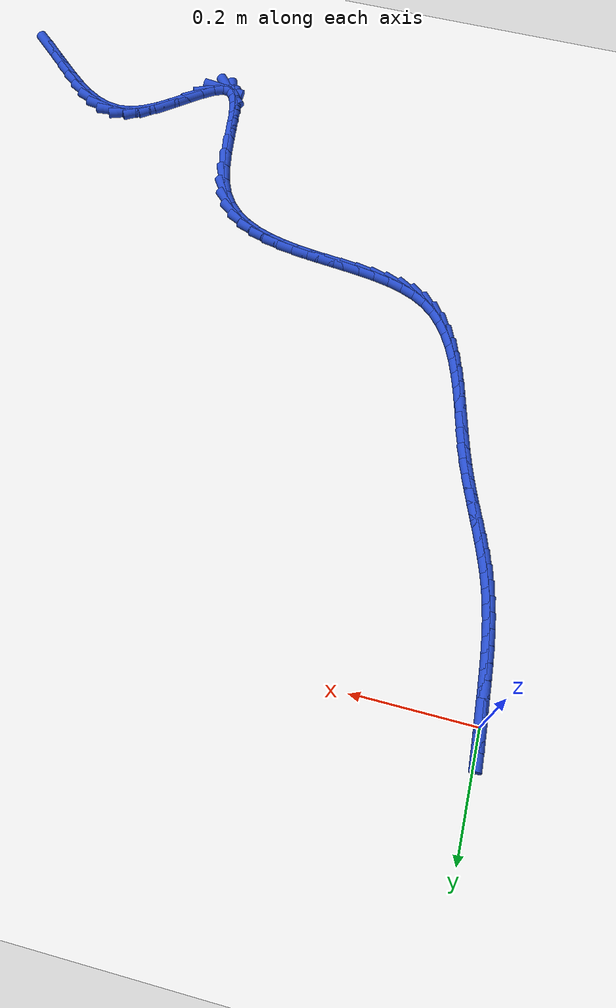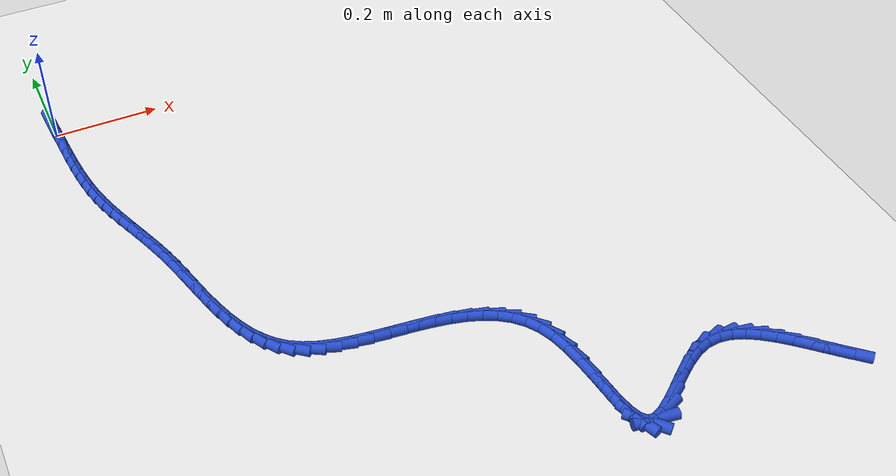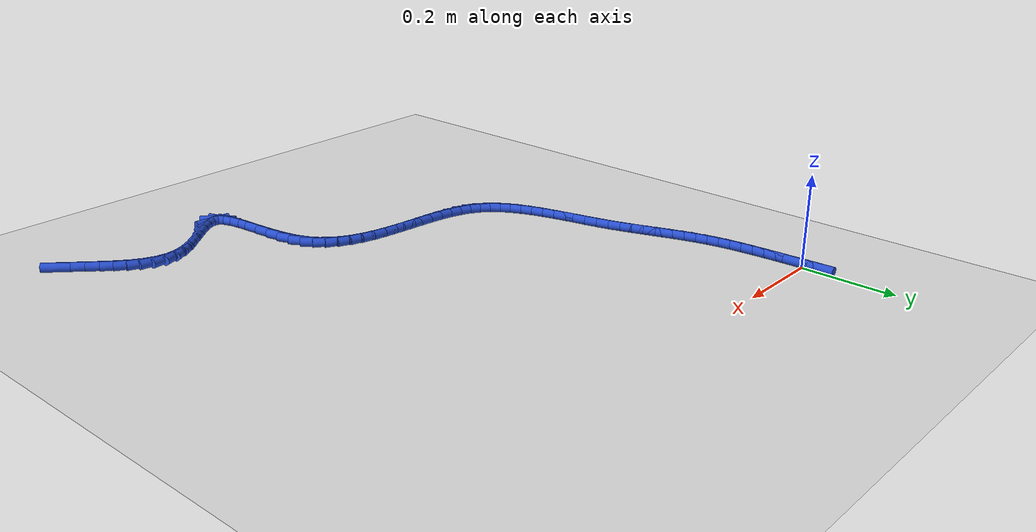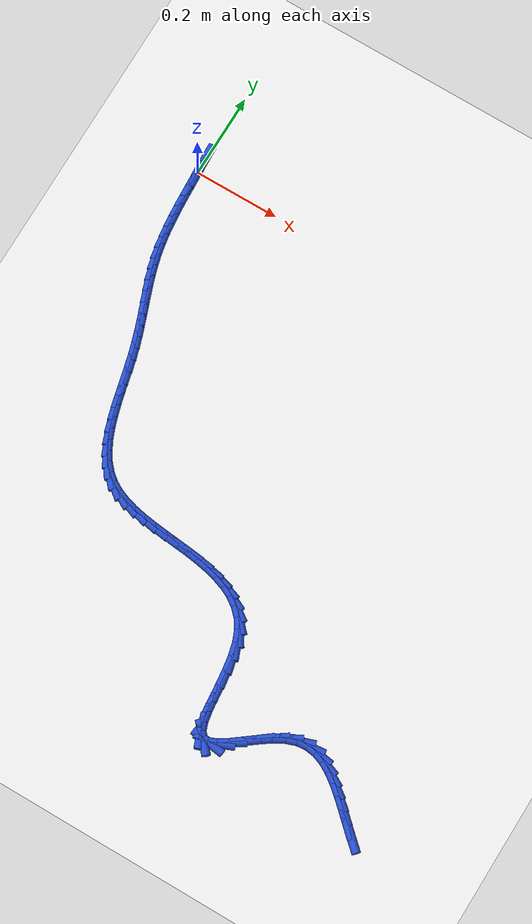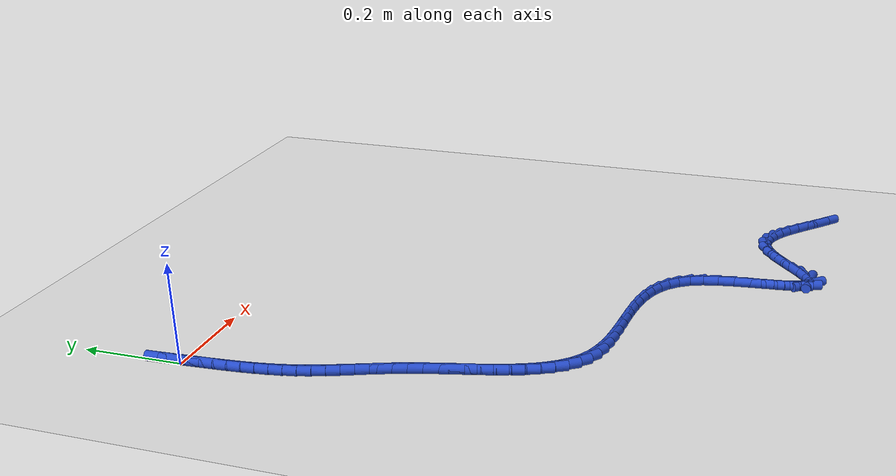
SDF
<sdf version="1.6">
 <world name="default">
  <model name="ground_plane">
   <static>1</static>
   <link name="link">
    <collision name="collision">
     <geometry><plane><normal>0 0 1</normal><size>100 100</size></plane></geometry>
     <surface><friction><ode><mu>100</mu><mu2>50</mu2></ode></friction></surface>
    </collision>
    <visual name="visual">
     <cast_shadows>0</cast_shadows>
     <geometry><plane><normal>0 0 1</normal><size>100 100</size></plane></geometry>
     <material>
      <script><uri>file://media/materials/scripts/gazebo.material</uri><name>Gazebo/WhiteGlow</name></script>
     </material>
    </visual>
   </link>
  </model>
  <model name="line">
   <link name="link_0">
    <pose>3.0357660829594124e-18 1.457167719820518e-16 0.01 0 1.57 -1.5142388703939624</pose>
    <collision name="collision">
     <geometry><cylinder><radius>0.01</radius><length>0.08</length></cylinder></geometry>
    </collision>
    <visual name="visual">
     <material>
      <script><name>Gazebo/Blue</name><uri>file://media/materials/scripts/gazebo.material</uri></script>
     </material>
     <geometry><cylinder><radius>0.01</radius><length>0.08</length></cylinder></geometry>
    </visual>
   </link>
   <link name="link_1">
    <pose>-0.001573101638511119 0.027784558628592738 0.01 0 1.57 -1.524897964280129</pose>
    <collision name="collision">
     <geometry><cylinder><radius>0.01</radius><length>0.08</length></cylinder></geometry>
    </collision>
    <visual name="visual">
     <material>
      <script><name>Gazebo/Blue</name><uri>file://media/materials/scripts/gazebo.material</uri></script>
     </material>
     <geometry><cylinder><radius>0.01</radius><length>0.08</length></cylinder></geometry>
    </visual>
   </link>
   <link name="link_220">
    <pose>1.0447408805715335 -1.1016761940526603 0.01 0 1.57 -0.7399274197182725</pose>
    <collision name="collision">
     <geometry><cylinder><radius>0.01</radius><length>0.08</length></cylinder></geometry>
    </collision>
    <visual name="visual">
     <material>
      <script><name>Gazebo/Blue</name><uri>file://media/materials/scripts/gazebo.material</uri></script>
     </material>
     <geometry><cylinder><radius>0.01</radius><length>0.08</length></cylinder></geometry>
    </visual>
   </link>
   <link name="link_221">
    <pose>1.0222661026128428 -1.0811577005693018 0.01 0 1.57 -0.7518106872347607</pose>
    <collision name="collision">
     <geometry><cylinder><radius>0.01</radius><length>0.08</length></cylinder></geometry>
    </collision>
    <visual name="visual">
     <material>
      <script><name>Gazebo/Blue</name><uri>file://media/materials/scripts/gazebo.material</uri></script>
     </material>
     <geometry><cylinder><radius>0.01</radius><length>0.08</length></cylinder></geometry>
    </visual>
   </link>
   <link name="link_222">
    <pose>1.0002999129753796 -1.060619657901304 0.01 0 1.57 -0.7391358604021896</pose>
    <collision name="collision">
     <geometry><cylinder><radius>0.01</radius><length>0.08</length></cylinder></geometry>
    </collision>
    <visual name="visual">
     <material>
      <script><name>Gazebo/Blue</name><uri>file://media/materials/scripts/gazebo.material</uri></script>
     </material>
     <geometry><cylinder><radius>0.01</radius><length>0.08</length></cylinder></geometry>
    </visual>
   </link>
   <link name="link_223">
    <pose>0.9786494217322549 -1.04088510130411 0.01 0 1.57 -0.6993343699864498</pose>
    <collision name="collision">
     <geometry><cylinder><radius>0.01</radius><length>0.08</length></cylinder></geometry>
    </collision>
    <visual name="visual">
     <material>
      <script><name>Gazebo/Blue</name><uri>file://media/materials/scripts/gazebo.material</uri></script>
     </material>
     <geometry><cylinder><radius>0.01</radius><length>0.08</length></cylinder></geometry>
    </visual>
   </link>
   <link name="link_224">
    <pose>0.9571217389565814 -1.022777066033165 0.01 0 1.57 -0.627311215593188</pose>
    <collision name="collision">
     <geometry><cylinder><radius>0.01</radius><length>0.08</length></cylinder></geometry>
    </collision>
    <visual name="visual">
     <material>
      <script><name>Gazebo/Blue</name><uri>file://media/materials/scripts/gazebo.material</uri></script>
     </material>
     <geometry><cylinder><radius>0.01</radius><length>0.08</length></cylinder></geometry>
    </visual>
   </link>
   <link name="link_225">
    <pose>0.9355239747214711 -1.0071185873439132 0.01 0 1.57 -0.5154844862760257</pose>
    <collision name="collision">
     <geometry><cylinder><radius>0.01</radius><length>0.08</length></cylinder></geometry>
    </collision>
    <visual name="visual">
     <material>
      <script><name>Gazebo/Blue</name><uri>file://media/materials/scripts/gazebo.material</uri></script>
     </material>
     <geometry><cylinder><radius>0.01</radius><length>0.08</length></cylinder></geometry>
    </visual>
   </link>
   <link name="link_226">
    <pose>0.9136632391000354 -0.9947327004917987 0.01 0 1.57 -0.3556846340617245</pose>
    <collision name="collision">
     <geometry><cylinder><radius>0.01</radius><length>0.08</length></cylinder></geometry>
    </collision>
    <visual name="visual">
     <material>
      <script><name>Gazebo/Blue</name><uri>file://media/materials/scripts/gazebo.material</uri></script>
     </material>
     <geometry><cylinder><radius>0.01</radius><length>0.08</length></cylinder></geometry>
    </visual>
   </link>
   <link name="link_227">
    <pose>0.8913466421653866 -0.9864424407322661 0.01 0 1.57 -0.14577102197636047</pose>
    <collision name="collision">
     <geometry><cylinder><radius>0.01</radius><length>0.08</length></cylinder></geometry>
    </collision>
    <visual name="visual">
     <material>
      <script><name>Gazebo/Blue</name><uri>file://media/materials/scripts/gazebo.material</uri></script>
     </material>
     <geometry><cylinder><radius>0.01</radius><length>0.08</length></cylinder></geometry>
    </visual>
   </link>
   <link name="link_228">
    <pose>0.8683812939906368 -0.98307084332076 0.01 0 1.57 0.09922784639381407</pose>
    <collision name="collision">
     <geometry><cylinder><radius>0.01</radius><length>0.08</length></cylinder></geometry>
    </collision>
    <visual name="visual">
     <material>
      <script><name>Gazebo/Blue</name><uri>file://media/materials/scripts/gazebo.material</uri></script>
     </material>
     <geometry><cylinder><radius>0.01</radius><length>0.08</length></cylinder></geometry>
    </visual>
   </link>
   <link name="link_229">
    <pose>0.8445743046488978 -0.9854409435127245 0.01 0 1.57 0.3438056435857901</pose>
    <collision name="collision">
     <geometry><cylinder><radius>0.01</radius><length>0.08</length></cylinder></geometry>
    </collision>
    <visual name="visual">
     <material>
      <script><name>Gazebo/Blue</name><uri>file://media/materials/scripts/gazebo.material</uri></script>
     </material>
     <geometry><cylinder><radius>0.01</radius><length>0.08</length></cylinder></geometry>
    </visual>
   </link>
   <link name="link_230">
    <pose>0.8197464498208067 -0.9943299241628845 0.01 0 1.57 0.5222644661790398</pose>
    <collision name="collision">
     <geometry><cylinder><radius>0.01</radius><length>0.08</length></cylinder></geometry>
    </collision>
    <visual name="visual">
     <material>
      <script><name>Gazebo/Blue</name><uri>file://media/materials/scripts/gazebo.material</uri></script>
     </material>
     <geometry><cylinder><radius>0.01</radius><length>0.08</length></cylinder></geometry>
    </visual>
   </link>
   <link name="link_231">
    <pose>0.7941516653990618 -1.0090615797140299 0.01 0 1.57 0.6176115552727601</pose>
    <collision name="collision">
     <geometry><cylinder><radius>0.01</radius><length>0.08</length></cylinder></geometry>
    </collision>
    <visual name="visual">
     <material>
      <script><name>Gazebo/Blue</name><uri>file://media/materials/scripts/gazebo.material</uri></script>
     </material>
     <geometry><cylinder><radius>0.01</radius><length>0.08</length></cylinder></geometry>
    </visual>
   </link>
   <link name="link_232">
    <pose>0.7685556161523783 -1.0272426936791645 0.01 0 1.57 0.6572075074999996</pose>
    <collision name="collision">
     <geometry><cylinder><radius>0.01</radius><length>0.08</length></cylinder></geometry>
    </collision>
    <visual name="visual">
     <material>
      <script><name>Gazebo/Blue</name><uri>file://media/materials/scripts/gazebo.material</uri></script>
     </material>
     <geometry><cylinder><radius>0.01</radius><length>0.08</length></cylinder></geometry>
    </visual>
   </link>
   <link name="link_233">
    <pose>0.7437534831810739 -1.046381013018266 0.01 0 1.57 0.6488145937634866</pose>
    <collision name="collision">
     <geometry><cylinder><radius>0.01</radius><length>0.08</length></cylinder></geometry>
    </collision>
    <visual name="visual">
     <material>
      <script><name>Gazebo/Blue</name><uri>file://media/materials/scripts/gazebo.material</uri></script>
     </material>
     <geometry><cylinder><radius>0.01</radius><length>0.08</length></cylinder></geometry>
    </visual>
   </link>
   <link name="link_234">
    <pose>0.7205404475854625 -1.063984284691313 0.01 0 1.57 0.5776323832995236</pose>
    <collision name="collision">
     <geometry><cylinder><radius>0.01</radius><length>0.08</length></cylinder></geometry>
    </collision>
    <visual name="visual">
     <material>
      <script><name>Gazebo/Blue</name><uri>file://media/materials/scripts/gazebo.material</uri></script>
     </material>
     <geometry><cylinder><radius>0.01</radius><length>0.08</length></cylinder></geometry>
    </visual>
   </link>
   <link name="link_235">
    <pose>0.6997116904658615 -1.0775602556582837 0.01 0 1.57 0.3803450925150977</pose>
    <collision name="collision">
     <geometry><cylinder><radius>0.01</radius><length>0.08</length></cylinder></geometry>
    </collision>
    <visual name="visual">
     <material>
      <script><name>Gazebo/Blue</name><uri>file://media/materials/scripts/gazebo.material</uri></script>
     </material>
     <geometry><cylinder><radius>0.01</radius><length>0.08</length></cylinder></geometry>
    </visual>
   </link>
   <link name="link_236">
    <pose>0.6820623929225861 -1.084616672879155 0.01 0 1.57 -0.13524217830947693</pose>
    <collision name="collision">
     <geometry><cylinder><radius>0.01</radius><length>0.08</length></cylinder></geometry>
    </collision>
    <visual name="visual">
     <material>
      <script><name>Gazebo/Blue</name><uri>file://media/materials/scripts/gazebo.material</uri></script>
     </material>
     <geometry><cylinder><radius>0.01</radius><length>0.08</length></cylinder></geometry>
    </visual>
   </link>
   <link name="link_237">
    <pose>0.6683510015579817 -1.0827509254306007 0.01 0 1.57 -0.84968308307362</pose>
    <collision name="collision">
     <geometry><cylinder><radius>0.01</radius><length>0.08</length></cylinder></geometry>
    </collision>
    <visual name="visual">
     <material>
      <script><name>Gazebo/Blue</name><uri>file://media/materials/scripts/gazebo.material</uri></script>
     </material>
     <geometry><cylinder><radius>0.01</radius><length>0.08</length></cylinder></geometry>
    </visual>
   </link>
   <link name="link_238">
    <pose>0.6585156532528151 -1.0715621801145554 0.01 0 1.57 -1.2248499734490885</pose>
    <collision name="collision">
     <geometry><cylinder><radius>0.01</radius><length>0.08</length></cylinder></geometry>
    </collision>
    <visual name="visual">
     <material>
      <script><name>Gazebo/Blue</name><uri>file://media/materials/scripts/gazebo.material</uri></script>
     </material>
     <geometry><cylinder><radius>0.01</radius><length>0.08</length></cylinder></geometry>
    </visual>
   </link>
   <link name="link_239">
    <pose>0.6516876047193517 -1.0526186097142027 0.01 0 1.57 -1.384399415902289</pose>
    <collision name="collision">
     <geometry><cylinder><radius>0.01</radius><length>0.08</length></cylinder></geometry>
    </collision>
    <visual name="visual">
     <material>
      <script><name>Gazebo/Blue</name><uri>file://media/materials/scripts/gazebo.material</uri></script>
     </material>
     <geometry><cylinder><radius>0.01</radius><length>0.08</length></cylinder></geometry>
    </visual>
   </link>
   <link name="link_240">
    <pose>0.6469640643119217 -1.0275714742207684 0.01 0 1.57 -1.4519726045118813</pose>
    <collision name="collision">
     <geometry><cylinder><radius>0.01</radius><length>0.08</length></cylinder></geometry>
    </collision>
    <visual name="visual">
     <material>
      <script><name>Gazebo/Blue</name><uri>file://media/materials/scripts/gazebo.material</uri></script>
     </material>
     <geometry><cylinder><radius>0.01</radius><length>0.08</length></cylinder></geometry>
    </visual>
   </link>
   <link name="link_241">
    <pose>0.6434422403848554 -0.9980720336254778 0.01 0 1.57 -1.471346830337238</pose>
    <collision name="collision">
     <geometry><cylinder><radius>0.01</radius><length>0.08</length></cylinder></geometry>
    </collision>
    <visual name="visual">
     <material>
      <script><name>Gazebo/Blue</name><uri>file://media/materials/scripts/gazebo.material</uri></script>
     </material>
     <geometry><cylinder><radius>0.01</radius><length>0.08</length></cylinder></geometry>
    </visual>
   </link>
   <link name="link_242">
    <pose>0.6402193412924835 -0.9657715479195569 0.01 0 1.57 -1.456889888200333</pose>
    <collision name="collision">
     <geometry><cylinder><radius>0.01</radius><length>0.08</length></cylinder></geometry>
    </collision>
    <visual name="visual">
     <material>
      <script><name>Gazebo/Blue</name><uri>file://media/materials/scripts/gazebo.material</uri></script>
     </material>
     <geometry><cylinder><radius>0.01</radius><length>0.08</length></cylinder></geometry>
    </visual>
   </link>
   <link name="link_243">
    <pose>0.6363925753891359 -0.9323212770942306 0.01 0 1.57 -1.4103181938623464</pose>
    <collision name="collision">
     <geometry><cylinder><radius>0.01</radius><length>0.08</length></cylinder></geometry>
    </collision>
    <visual name="visual">
     <material>
      <script><name>Gazebo/Blue</name><uri>file://media/materials/scripts/gazebo.material</uri></script>
     </material>
     <geometry><cylinder><radius>0.01</radius><length>0.08</length></cylinder></geometry>
    </visual>
   </link>
   <link name="link_244">
    <pose>0.6310591510291436 -0.8993724811407257 0.01 0 1.57 -1.3244777070925944</pose>
    <collision name="collision">
     <geometry><cylinder><radius>0.01</radius><length>0.08</length></cylinder></geometry>
    </collision>
    <visual name="visual">
     <material>
      <script><name>Gazebo/Blue</name><uri>file://media/materials/scripts/gazebo.material</uri></script>
     </material>
     <geometry><cylinder><radius>0.01</radius><length>0.08</length></cylinder></geometry>
    </visual>
   </link>
   <link name="link_245">
    <pose>0.6233162765668364 -0.8685764200502666 0.01 0 1.57 -1.1827235247190888</pose>
    <collision name="collision">
     <geometry><cylinder><radius>0.01</radius><length>0.08</length></cylinder></geometry>
    </collision>
    <visual name="visual">
     <material>
      <script><name>Gazebo/Blue</name><uri>file://media/materials/scripts/gazebo.material</uri></script>
     </material>
     <geometry><cylinder><radius>0.01</radius><length>0.08</length></cylinder></geometry>
    </visual>
   </link>
   <link name="link_246">
    <pose>0.6122735503208517 -0.8415641357954396 0.01 0 1.57 -0.9912862299851828</pose>
    <collision name="collision">
     <geometry><cylinder><radius>0.01</radius><length>0.08</length></cylinder></geometry>
    </collision>
    <visual name="visual">
     <material>
      <script><name>Gazebo/Blue</name><uri>file://media/materials/scripts/gazebo.material</uri></script>
     </material>
     <geometry><cylinder><radius>0.01</radius><length>0.08</length></cylinder></geometry>
    </visual>
   </link>
   <link name="link_247">
    <pose>0.5975715849007756 -0.819100158019437 0.01 0 1.57 -0.7943424305392306</pose>
    <collision name="collision">
     <geometry><cylinder><radius>0.01</radius><length>0.08</length></cylinder></geometry>
    </collision>
    <visual name="visual">
     <material>
      <script><name>Gazebo/Blue</name><uri>file://media/materials/scripts/gazebo.material</uri></script>
     </material>
     <geometry><cylinder><radius>0.01</radius><length>0.08</length></cylinder></geometry>
    </visual>
   </link>
   <link name="link_248">
    <pose>0.5795707925328824 -0.8007744430005072 0.01 0 1.57 -0.6126366402637489</pose>
    <collision name="collision">
     <geometry><cylinder><radius>0.01</radius><length>0.08</length></cylinder></geometry>
    </collision>
    <visual name="visual">
     <material>
      <script><name>Gazebo/Blue</name><uri>file://media/materials/scripts/gazebo.material</uri></script>
     </material>
     <geometry><cylinder><radius>0.01</radius><length>0.08</length></cylinder></geometry>
    </visual>
   </link>
   <link name="link_249">
    <pose>0.5586828310337841 -0.7860933241528574 0.01 0 1.57 -0.45844495776743394</pose>
    <collision name="collision">
     <geometry><cylinder><radius>0.01</radius><length>0.08</length></cylinder></geometry>
    </collision>
    <visual name="visual">
     <material>
      <script><name>Gazebo/Blue</name><uri>file://media/materials/scripts/gazebo.material</uri></script>
     </material>
     <geometry><cylinder><radius>0.01</radius><length>0.08</length></cylinder></geometry>
    </visual>
   </link>
   <link name="link_250">
    <pose>0.535319358220094 -0.7745631348906958 0.01 0 1.57 -0.3357412309646161</pose>
    <collision name="collision">
     <geometry><cylinder><radius>0.01</radius><length>0.08</length></cylinder></geometry>
    </collision>
    <visual name="visual">
     <material>
      <script><name>Gazebo/Blue</name><uri>file://media/materials/scripts/gazebo.material</uri></script>
     </material>
     <geometry><cylinder><radius>0.01</radius><length>0.08</length></cylinder></geometry>
    </visual>
   </link>
   <link name="link_251">
    <pose>0.5098920319084249 -0.7656902086282307 0.01 0 1.57 -0.24287305869410705</pose>
    <collision name="collision">
     <geometry><cylinder><radius>0.01</radius><length>0.08</length></cylinder></geometry>
    </collision>
    <visual name="visual">
     <material>
      <script><name>Gazebo/Blue</name><uri>file://media/materials/scripts/gazebo.material</uri></script>
     </material>
     <geometry><cylinder><radius>0.01</radius><length>0.08</length></cylinder></geometry>
    </visual>
   </link>
   <link name="link_252">
    <pose>0.4828125099153896 -0.75898087877967 0.01 0 1.57 -0.17610127386166557</pose>
    <collision name="collision">
     <geometry><cylinder><radius>0.01</radius><length>0.08</length></cylinder></geometry>
    </collision>
    <visual name="visual">
     <material>
      <script><name>Gazebo/Blue</name><uri>file://media/materials/scripts/gazebo.material</uri></script>
     </material>
     <geometry><cylinder><radius>0.01</radius><length>0.08</length></cylinder></geometry>
    </visual>
   </link>
   <link name="link_253">
    <pose>0.4544924500576012 -0.7539414787592222 0.01 0 1.57 -0.1317630844051169</pose>
    <collision name="collision">
     <geometry><cylinder><radius>0.01</radius><length>0.08</length></cylinder></geometry>
    </collision>
    <visual name="visual">
     <material>
      <script><name>Gazebo/Blue</name><uri>file://media/materials/scripts/gazebo.material</uri></script>
     </material>
     <geometry><cylinder><radius>0.01</radius><length>0.08</length></cylinder></geometry>
    </visual>
   </link>
   <link name="link_254">
    <pose>0.425343510151672 -0.7500783419810945 0.01 0 1.57 -0.1071615616602992</pose>
    <collision name="collision">
     <geometry><cylinder><radius>0.01</radius><length>0.08</length></cylinder></geometry>
    </collision>
    <visual name="visual">
     <material>
      <script><name>Gazebo/Blue</name><uri>file://media/materials/scripts/gazebo.material</uri></script>
     </material>
     <geometry><cylinder><radius>0.01</radius><length>0.08</length></cylinder></geometry>
    </visual>
   </link>
   <link name="link_255">
    <pose>0.3957773480142152 -0.7468978018594952 0.01 0 1.57 -0.10082152685093666</pose>
    <collision name="collision">
     <geometry><cylinder><radius>0.01</radius><length>0.08</length></cylinder></geometry>
    </collision>
    <visual name="visual">
     <material>
      <script><name>Gazebo/Blue</name><uri>file://media/materials/scripts/gazebo.material</uri></script>
     </material>
     <geometry><cylinder><radius>0.01</radius><length>0.08</length></cylinder></geometry>
    </visual>
   </link>
   <link name="link_256">
    <pose>0.3662056214618435 -0.7439061918086322 0.01 0 1.57 -0.11254401497020507</pose>
    <collision name="collision">
     <geometry><cylinder><radius>0.01</radius><length>0.08</length></cylinder></geometry>
    </collision>
    <visual name="visual">
     <material>
      <script><name>Gazebo/Blue</name><uri>file://media/materials/scripts/gazebo.material</uri></script>
     </material>
     <geometry><cylinder><radius>0.01</radius><length>0.08</length></cylinder></geometry>
    </visual>
   </link>
   <link name="link_257">
    <pose>0.3370399883111696 -0.7406098452427136 0.01 0 1.57 -0.14345418490443437</pose>
    <collision name="collision">
     <geometry><cylinder><radius>0.01</radius><length>0.08</length></cylinder></geometry>
    </collision>
    <visual name="visual">
     <material>
      <script><name>Gazebo/Blue</name><uri>file://media/materials/scripts/gazebo.material</uri></script>
     </material>
     <geometry><cylinder><radius>0.01</radius><length>0.08</length></cylinder></geometry>
    </visual>
   </link>
   <link name="link_258">
    <pose>0.3086921063788067 -0.7365150955759474 0.01 0 1.57 -0.19608773538766353</pose>
    <collision name="collision">
     <geometry><cylinder><radius>0.01</radius><length>0.08</length></cylinder></geometry>
    </collision>
    <visual name="visual">
     <material>
      <script><name>Gazebo/Blue</name><uri>file://media/materials/scripts/gazebo.material</uri></script>
     </material>
     <geometry><cylinder><radius>0.01</radius><length>0.08</length></cylinder></geometry>
    </visual>
   </link>
   <link name="link_259">
    <pose>0.28157363348136716 -0.7311282762225414 0.01 0 1.57 -0.2744233251069777</pose>
    <collision name="collision">
     <geometry><cylinder><radius>0.01</radius><length>0.08</length></cylinder></geometry>
    </collision>
    <visual name="visual">
     <material>
      <script><name>Gazebo/Blue</name><uri>file://media/materials/scripts/gazebo.material</uri></script>
     </material>
     <geometry><cylinder><radius>0.01</radius><length>0.08</length></cylinder></geometry>
    </visual>
   </link>
   <link name="link_260">
    <pose>0.2560962274354642 -0.7239557205967041 0.01 0 1.57 -0.38352362693887954</pose>
    <collision name="collision">
     <geometry><cylinder><radius>0.01</radius><length>0.08</length></cylinder></geometry>
    </collision>
    <visual name="visual">
     <material>
      <script><name>Gazebo/Blue</name><uri>file://media/materials/scripts/gazebo.material</uri></script>
     </material>
     <geometry><cylinder><radius>0.01</radius><length>0.08</length></cylinder></geometry>
    </visual>
   </link>
   <link name="link_261">
    <pose>0.23267154605771043 -0.7145037621126429 0.01 0 1.57 -0.5280038621186347</pose>
    <collision name="collision">
     <geometry><cylinder><radius>0.01</radius><length>0.08</length></cylinder></geometry>
    </collision>
    <visual name="visual">
     <material>
      <script><name>Gazebo/Blue</name><uri>file://media/materials/scripts/gazebo.material</uri></script>
     </material>
     <geometry><cylinder><radius>0.01</radius><length>0.08</length></cylinder></geometry>
    </visual>
   </link>
   <link name="link_262">
    <pose>0.21171115041923955 -0.7022788475388976 0.01 0 1.57 -0.6981698388548528</pose>
    <collision name="collision">
     <geometry><cylinder><radius>0.01</radius><length>0.08</length></cylinder></geometry>
    </collision>
    <visual name="visual">
     <material>
      <script><name>Gazebo/Blue</name><uri>file://media/materials/scripts/gazebo.material</uri></script>
     </material>
     <geometry><cylinder><radius>0.01</radius><length>0.08</length></cylinder></geometry>
    </visual>
   </link>
   <link name="link_263">
    <pose>0.1934696969037786 -0.6869712650607546 0.01 0 1.57 -0.856061083122772</pose>
    <collision name="collision">
     <geometry><cylinder><radius>0.01</radius><length>0.08</length></cylinder></geometry>
    </collision>
    <visual name="visual">
     <material>
      <script><name>Gazebo/Blue</name><uri>file://media/materials/scripts/gazebo.material</uri></script>
     </material>
     <geometry><cylinder><radius>0.01</radius><length>0.08</length></cylinder></geometry>
    </visual>
   </link>
   <link name="link_264">
    <pose>0.17772588570295775 -0.668828969190177 0.01 0 1.57 -0.9892585696148779</pose>
    <collision name="collision">
     <geometry><cylinder><radius>0.01</radius><length>0.08</length></cylinder></geometry>
    </collision>
    <visual name="visual">
     <material>
      <script><name>Gazebo/Blue</name><uri>file://media/materials/scripts/gazebo.material</uri></script>
     </material>
     <geometry><cylinder><radius>0.01</radius><length>0.08</length></cylinder></geometry>
    </visual>
   </link>
   <link name="link_265">
    <pose>0.16416850802232896 -0.6482052586175109 0.01 0 1.57 -1.0964387890714793</pose>
    <collision name="collision">
     <geometry><cylinder><radius>0.01</radius><length>0.08</length></cylinder></geometry>
    </collision>
    <visual name="visual">
     <material>
      <script><name>Gazebo/Blue</name><uri>file://media/materials/scripts/gazebo.material</uri></script>
     </material>
     <geometry><cylinder><radius>0.01</radius><length>0.08</length></cylinder></geometry>
    </visual>
   </link>
   <link name="link_266">
    <pose>0.15248635506744282 -0.6254534320330992 0.01 0 1.57 -1.1795295141932345</pose>
    <collision name="collision">
     <geometry><cylinder><radius>0.01</radius><length>0.08</length></cylinder></geometry>
    </collision>
    <visual name="visual">
     <material>
      <script><name>Gazebo/Blue</name><uri>file://media/materials/scripts/gazebo.material</uri></script>
     </material>
     <geometry><cylinder><radius>0.01</radius><length>0.08</length></cylinder></geometry>
    </visual>
   </link>
   <link name="link_267">
    <pose>0.14236821804385133 -0.6009267881272872 0.01 0 1.57 -1.2415747029300943</pose>
    <collision name="collision">
     <geometry><cylinder><radius>0.01</radius><length>0.08</length></cylinder></geometry>
    </collision>
    <visual name="visual">
     <material>
      <script><name>Gazebo/Blue</name><uri>file://media/materials/scripts/gazebo.material</uri></script>
     </material>
     <geometry><cylinder><radius>0.01</radius><length>0.08</length></cylinder></geometry>
    </visual>
   </link>
   <link name="link_268">
    <pose>0.13350288815710595 -0.5749786255904195 0.01 0 1.57 -1.2855035104854613</pose>
    <collision name="collision">
     <geometry><cylinder><radius>0.01</radius><length>0.08</length></cylinder></geometry>
    </collision>
    <visual name="visual">
     <material>
      <script><name>Gazebo/Blue</name><uri>file://media/materials/scripts/gazebo.material</uri></script>
     </material>
     <geometry><cylinder><radius>0.01</radius><length>0.08</length></cylinder></geometry>
    </visual>
   </link>
   <link name="link_269">
    <pose>0.12557915661275817 -0.5479622431128407 0.01 0 1.57 -1.3136199784975655</pose>
    <collision name="collision">
     <geometry><cylinder><radius>0.01</radius><length>0.08</length></cylinder></geometry>
    </collision>
    <visual name="visual">
     <material>
      <script><name>Gazebo/Blue</name><uri>file://media/materials/scripts/gazebo.material</uri></script>
     </material>
     <geometry><cylinder><radius>0.01</radius><length>0.08</length></cylinder></geometry>
    </visual>
   </link>
   <link name="link_270">
    <pose>0.1182858146163596 -0.5202309393848958 0.01 0 1.57 -1.3274623049558638</pose>
    <collision name="collision">
     <geometry><cylinder><radius>0.01</radius><length>0.08</length></cylinder></geometry>
    </collision>
    <visual name="visual">
     <material>
      <script><name>Gazebo/Blue</name><uri>file://media/materials/scripts/gazebo.material</uri></script>
     </material>
     <geometry><cylinder><radius>0.01</radius><length>0.08</length></cylinder></geometry>
    </visual>
   </link>
   <link name="link_271">
    <pose>0.11131165337346165 -0.49213801309692895 0.01 0 1.57 -1.327798817688703</pose>
    <collision name="collision">
     <geometry><cylinder><radius>0.01</radius><length>0.08</length></cylinder></geometry>
    </collision>
    <visual name="visual">
     <material>
      <script><name>Gazebo/Blue</name><uri>file://media/materials/scripts/gazebo.material</uri></script>
     </material>
     <geometry><cylinder><radius>0.01</radius><length>0.08</length></cylinder></geometry>
    </visual>
   </link>
   <link name="link_272">
    <pose>0.10434546408961584 -0.46403676293928503 0.01 0 1.57 -1.3146474581813379</pose>
    <collision name="collision">
     <geometry><cylinder><radius>0.01</radius><length>0.08</length></cylinder></geometry>
    </collision>
    <visual name="visual">
     <material>
      <script><name>Gazebo/Blue</name><uri>file://media/materials/scripts/gazebo.material</uri></script>
     </material>
     <geometry><cylinder><radius>0.01</radius><length>0.08</length></cylinder></geometry>
    </visual>
   </link>
   <link name="link_273">
    <pose>0.09707603797037369 -0.43628048760230853 0.01 0 1.57 -1.2875309810803284</pose>
    <collision name="collision">
     <geometry><cylinder><radius>0.01</radius><length>0.08</length></cylinder></geometry>
    </collision>
    <visual name="visual">
     <material>
      <script><name>Gazebo/Blue</name><uri>file://media/materials/scripts/gazebo.material</uri></script>
     </material>
     <geometry><cylinder><radius>0.01</radius><length>0.08</length></cylinder></geometry>
    </visual>
   </link>
   <link name="link_274">
    <pose>0.08919808401516321 -0.4092171309249248 0.01 0 1.57 -1.255411384114195</pose>
    <collision name="collision">
     <geometry><cylinder><radius>0.01</radius><length>0.08</length></cylinder></geometry>
    </collision>
    <visual name="visual">
     <material>
      <script><name>Gazebo/Blue</name><uri>file://media/materials/scripts/gazebo.material</uri></script>
     </material>
     <geometry><cylinder><radius>0.01</radius><length>0.08</length></cylinder></geometry>
    </visual>
   </link>
   <link name="link_275">
    <pose>0.08063891360831085 -0.38298416114706013 0.01 0 1.57 -1.2316652026371775</pose>
    <collision name="collision">
     <geometry><cylinder><radius>0.01</radius><length>0.08</length></cylinder></geometry>
    </collision>
    <visual name="visual">
     <material>
      <script><name>Gazebo/Blue</name><uri>file://media/materials/scripts/gazebo.material</uri></script>
     </material>
     <geometry><cylinder><radius>0.01</radius><length>0.08</length></cylinder></geometry>
    </visual>
   </link>
   <link name="link_276">
    <pose>0.0716294793233533 -0.3574442898194188 0.01 0 1.57 -1.217917447864927</pose>
    <collision name="collision">
     <geometry><cylinder><radius>0.01</radius><length>0.08</length></cylinder></geometry>
    </collision>
    <visual name="visual">
     <material>
      <script><name>Gazebo/Blue</name><uri>file://media/materials/scripts/gazebo.material</uri></script>
     </material>
     <geometry><cylinder><radius>0.01</radius><length>0.08</length></cylinder></geometry>
    </visual>
   </link>
   <link name="link_277">
    <pose>0.06242117639819331 -0.3324417304793268 0.01 0 1.57 -1.21477428140296</pose>
    <collision name="collision">
     <geometry><cylinder><radius>0.01</radius><length>0.08</length></cylinder></geometry>
    </collision>
    <visual name="visual">
     <material>
      <script><name>Gazebo/Blue</name><uri>file://media/materials/scripts/gazebo.material</uri></script>
     </material>
     <geometry><cylinder><radius>0.01</radius><length>0.08</length></cylinder></geometry>
    </visual>
   </link>
   <link name="link_278">
    <pose>0.05326540007073381 -0.3078206966641103 0.01 0 1.57 -1.2227192347833253</pose>
    <collision name="collision">
     <geometry><cylinder><radius>0.01</radius><length>0.08</length></cylinder></geometry>
    </collision>
    <visual name="visual">
     <material>
      <script><name>Gazebo/Blue</name><uri>file://media/materials/scripts/gazebo.material</uri></script>
     </material>
     <geometry><cylinder><radius>0.01</radius><length>0.08</length></cylinder></geometry>
    </visual>
   </link>
   <link name="link_279">
    <pose>0.0444135455788777 -0.28342540191109566 0.01 0 1.57 -1.2421029492838003</pose>
    <collision name="collision">
     <geometry><cylinder><radius>0.01</radius><length>0.08</length></cylinder></geometry>
    </collision>
    <visual name="visual">
     <material>
      <script><name>Gazebo/Blue</name><uri>file://media/materials/scripts/gazebo.material</uri></script>
     </material>
     <geometry><cylinder><radius>0.01</radius><length>0.08</length></cylinder></geometry>
    </visual>
   </link>
   <link name="link_280">
    <pose>0.03611700816052809 -0.25910005975760964 0.01 0 1.57 -1.273094901566642</pose>
    <collision name="collision">
     <geometry><cylinder><radius>0.01</radius><length>0.08</length></cylinder></geometry>
    </collision>
    <visual name="visual">
     <material>
      <script><name>Gazebo/Blue</name><uri>file://media/materials/scripts/gazebo.material</uri></script>
     </material>
     <geometry><cylinder><radius>0.01</radius><length>0.08</length></cylinder></geometry>
    </visual>
   </link>
   <link name="link_281">
    <pose>0.028627183053587316 -0.23468888374097693 0.01 0 1.57 -1.3155696552267477</pose>
    <collision name="collision">
     <geometry><cylinder><radius>0.01</radius><length>0.08</length></cylinder></geometry>
    </collision>
    <visual name="visual">
     <material>
      <script><name>Gazebo/Blue</name><uri>file://media/materials/scripts/gazebo.material</uri></script>
     </material>
     <geometry><cylinder><radius>0.01</radius><length>0.08</length></cylinder></geometry>
    </visual>
   </link>
   <link name="link_282">
    <pose>0.02219490728227314 -0.2100362960646299 0.01 0 1.57 -1.3640862972684489</pose>
    <collision name="collision">
     <geometry><cylinder><radius>0.01</radius><length>0.08</length></cylinder></geometry>
    </collision>
    <visual name="visual">
     <material>
      <script><name>Gazebo/Blue</name><uri>file://media/materials/scripts/gazebo.material</uri></script>
     </material>
     <geometry><cylinder><radius>0.01</radius><length>0.08</length></cylinder></geometry>
    </visual>
   </link>
   <link name="link_283">
    <pose>0.016951263046407705 -0.18503148453603455 0.01 0 1.57 -1.4070339042066655</pose>
    <collision name="collision">
     <geometry><cylinder><radius>0.01</radius><length>0.08</length></cylinder></geometry>
    </collision>
    <visual name="visual">
     <material>
      <script><name>Gazebo/Blue</name><uri>file://media/materials/scripts/gazebo.material</uri></script>
     </material>
     <geometry><cylinder><radius>0.01</radius><length>0.08</length></cylinder></geometry>
    </visual>
   </link>
   <link name="link_284">
    <pose>0.012759446190129288 -0.159663775680119 0.01 0 1.57 -1.442723647359634</pose>
    <collision name="collision">
     <geometry><cylinder><radius>0.01</radius><length>0.08</length></cylinder></geometry>
    </collision>
    <visual name="visual">
     <material>
      <script><name>Gazebo/Blue</name><uri>file://media/materials/scripts/gazebo.material</uri></script>
     </material>
     <geometry><cylinder><radius>0.01</radius><length>0.08</length></cylinder></geometry>
    </visual>
   </link>
   <link name="link_285">
    <pose>0.009446297427298848 -0.1339360859491886 0.01 0 1.57 -1.471159385953416</pose>
    <collision name="collision">
     <geometry><cylinder><radius>0.01</radius><length>0.08</length></cylinder></geometry>
    </collision>
    <visual name="visual">
     <material>
      <script><name>Gazebo/Blue</name><uri>file://media/materials/scripts/gazebo.material</uri></script>
     </material>
     <geometry><cylinder><radius>0.01</radius><length>0.08</length></cylinder></geometry>
    </visual>
   </link>
   <link name="link_286">
    <pose>0.00683865747177735 -0.10785133179554861 0.01 0 1.57 -1.4924631205434813</pose>
    <collision name="collision">
     <geometry><cylinder><radius>0.01</radius><length>0.08</length></cylinder></geometry>
    </collision>
    <visual name="visual">
     <material>
      <script><name>Gazebo/Blue</name><uri>file://media/materials/scripts/gazebo.material</uri></script>
     </material>
     <geometry><cylinder><radius>0.01</radius><length>0.08</length></cylinder></geometry>
    </visual>
   </link>
   <link name="link_287">
    <pose>0.004763367037425755 -0.0814124296715044 0.01 0 1.57 -1.5068265554088174</pose>
    <collision name="collision">
     <geometry><cylinder><radius>0.01</radius><length>0.08</length></cylinder></geometry>
    </collision>
    <visual name="visual">
     <material>
      <script><name>Gazebo/Blue</name><uri>file://media/materials/scripts/gazebo.material</uri></script>
     </material>
     <geometry><cylinder><radius>0.01</radius><length>0.08</length></cylinder></geometry>
    </visual>
   </link>
   <link name="link_288">
    <pose>0.0030472668381050245 -0.05462229602936136 0.01 0 1.57 -1.5144758225592239</pose>
    <collision name="collision">
     <geometry><cylinder><radius>0.01</radius><length>0.08</length></cylinder></geometry>
    </collision>
    <visual name="visual">
     <material>
      <script><name>Gazebo/Blue</name><uri>file://media/materials/scripts/gazebo.material</uri></script>
     </material>
     <geometry><cylinder><radius>0.01</radius><length>0.08</length></cylinder></geometry>
    </visual>
   </link>
   <link name="link_289">
    <pose>0.001517197587676121 -0.02748384732142476 0.01 0 1.57 -1.5156490538067666</pose>
    <collision name="collision">
     <geometry><cylinder><radius>0.01</radius><length>0.08</length></cylinder></geometry>
    </collision>
    <visual name="visual">
     <material>
      <script><name>Gazebo/Blue</name><uri>file://media/materials/scripts/gazebo.material</uri></script>
     </material>
     <geometry><cylinder><radius>0.01</radius><length>0.08</length></cylinder></geometry>
    </visual>
   </link>
   <link name="link_290">
    <pose>9.107298248878237e-18 1.3877787807814457e-17 0.01 0 1.57 -1.5105850962286393</pose>
    <collision name="collision">
     <geometry><cylinder><radius>0.01</radius><length>0.08</length></cylinder></geometry>
    </collision>
    <visual name="visual">
     <material>
      <script><name>Gazebo/Blue</name><uri>file://media/materials/scripts/gazebo.material</uri></script>
     </material>
     <geometry><cylinder><radius>0.01</radius><length>0.08</length></cylinder></geometry>
    </visual>
   </link>
  </model>
 </world>
</sdf>
